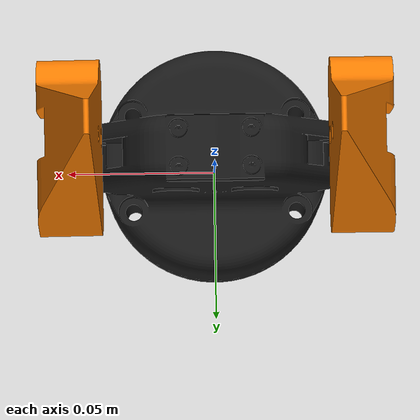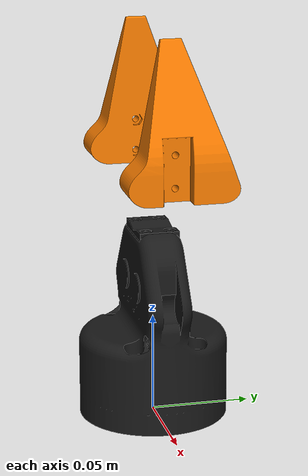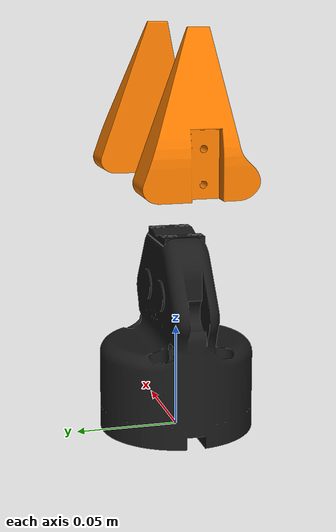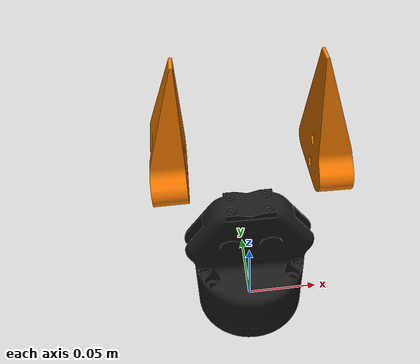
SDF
<?xml version='1.0' encoding='UTF-8'?>
<!--
  Simplified SDF file for Robotiq 85 Gripper with parallel fingers only
  This version contains only the base link and left/right finger assemblies
  for distance evaluation testing.
-->
<sdf version="1.7" xmlns:drake="http://drake.mit.edu">
  <model name="robotiq_gripper_85">

    <!-- Base link of the gripper -->
    <link name="robotiq_85_base_link">
      <pose>0 0 0 0 0 0</pose>
      <inertial>
        <pose>0.00021987 -2.3546E-10 0.030163 0 0 0</pose>
        <mass>0.30915</mass>
        <inertia>
          <ixx>0.00028972</ixx>
          <ixy>-5.7879E-10</ixy>
          <ixz>-1.8543E-06</ixz>
          <iyy>0.00030737</iyy>
          <iyz>1.682E-12</iyz>
          <izz>0.00019914</izz>
        </inertia>
      </inertial>

      <visual name="visual">
        <pose>0 0 0 0 0 0</pose>
        <geometry>
          <mesh>
            <uri>meshes/robotiq_85_base_link_fine.obj</uri>
          </mesh>
        </geometry>
        <material>
          <ambient>0.1 0.1 0.1 1</ambient>
          <diffuse>0.1 0.1 0.1 1</diffuse>
          <specular>0.2 0.2 0.2 1</specular>
        </material>
      </visual>

      <collision name="collision">
        <pose>0 0 0 0 0 0</pose>
        <geometry>
          <mesh>
            <uri>meshes/robotiq_85_base_link_coarse.obj</uri>
          </mesh>
        </geometry>
      </collision>
    </link>

    <!-- Left finger assembly -->
    <link name="left_finger">
      <pose>0.047285310862444 0 0.1148045193817614 0 0 0</pose>
      <inertial>
        <pose>0.00602756228812038 -6.47284509480176E-15 0.00669925609578108 0 0 0</pose>
        <mass>0.00724255346165744</mass>
        <inertia>
          <ixx>1.47824283625957E-06</ixx>
          <ixy>-3.95952064019123E-19</ixy>
          <ixz>1.80452387179145E-07</ixz>
          <iyy>9.81964343679842E-07</iyy>
          <iyz>1.39681001690899E-18</iyz>
          <izz>7.70370391807832E-07</izz>
        </inertia>
      </inertial>

      <visual name="visual">
        <pose>0 0 0 0 0 0</pose>
        <geometry>
          <mesh>
            <uri>meshes/left_finger.obj</uri>
          </mesh>
        </geometry>
        <material>
          <ambient>1 0.5 0 1</ambient>
          <diffuse>1 0.5 0 1</diffuse>
          <specular>0.2 0.2 0.2 1</specular>
        </material>
      </visual>

      <collision name="collision">
        <pose>0 0 0 0 0 0</pose>
        <geometry>
          <mesh>
            <uri>meshes/left_finger.obj</uri>
          </mesh>
        </geometry>
      </collision>
    </link>

    <!-- Left finger joint (primary actuated joint) -->
    <joint name="left_finger_joint" type="prismatic">
      <parent>robotiq_85_base_link</parent>
      <child>left_finger</child>
      <axis>
        <xyz>-0.9589 0 0.2837</xyz>
        <limit>
          <lower>0.0</lower>
          <upper>0.04588</upper>
          <velocity>1.0</velocity>
          <effort>100</effort>
        </limit>
      </axis>
    </joint>

    <!-- Right finger assembly -->
    <link name="right_finger">
      <pose>-0.047285310862444 0 0.1148045193817614 0 0 3.14159265358979</pose>
      <inertial>
        <pose>0.00602756228812038 -6.47284509480176E-15 0.00669925609578108 0 0 0</pose>
        <mass>0.00724255346165744</mass>
        <inertia>
          <ixx>1.47824283625957E-06</ixx>
          <ixy>-3.95952064019123E-19</ixy>
          <ixz>1.80452387179145E-07</ixz>
          <iyy>9.81964343679842E-07</iyy>
          <iyz>1.39681001690899E-18</iyz>
          <izz>7.70370391807832E-07</izz>
        </inertia>
      </inertial>

      <visual name="visual">
        <pose>0 0 0 0 0 0</pose>
        <geometry>
          <mesh>
            <uri>meshes/right_finger.obj</uri>
          </mesh>
        </geometry>
        <material>
          <ambient>1 0.5 0 1</ambient>
          <diffuse>1 0.5 0 1</diffuse>
          <specular>0.2 0.2 0.2 1</specular>
        </material>
      </visual>

      <collision name="collision">
        <pose>0 0 0 0 0 0</pose>
        <geometry>
          <mesh>
            <uri>meshes/right_finger.obj</uri>
          </mesh>
        </geometry>
      </collision>
    </link>

    <!-- Right finger joint (mirrored prismatic) -->
    <joint name="right_finger_joint" type="prismatic">
      <parent>robotiq_85_base_link</parent>
      <child>right_finger</child>
      <axis>
        <xyz>-0.9589 0 0.2837</xyz>
        <limit>
          <lower>0.0</lower>
          <upper>0.04588</upper>
          <velocity>1.0</velocity>
          <effort>100</effort>
        </limit>
      </axis>
    </joint>
  </model>
</sdf>
